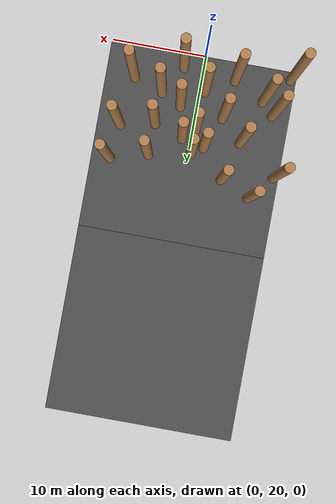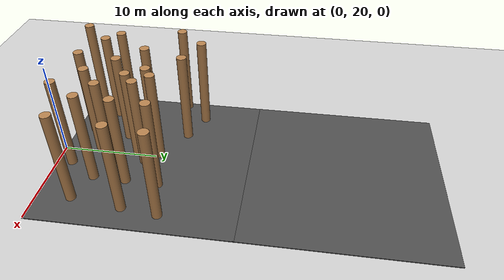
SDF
<sdf version="1.6">
 <world name="default">
  <model name="ground_plane">
   <static>1</static>
   <link name="link">
    <collision name="collision">
     <geometry><plane><normal>0 0 1</normal><size>100 100</size></plane></geometry>
     <surface><friction><ode><mu>100</mu><mu2>50</mu2></ode></friction></surface>
    </collision>
    <visual name="visual">
     <cast_shadows>0</cast_shadows>
     <geometry><plane><normal>0 0 1</normal><size>100 100</size></plane></geometry>
     <material>
      <script><uri>file://media/materials/scripts/gazebo.material</uri><name>Gazebo/Grey</name></script>
     </material>
    </visual>
   </link>
  </model>
  <model name="asphalt_plane_2">
   <static>1</static>
   <link name="link">
    <collision name="collision"><geometry><box><size>20 20 0.1</size></box></geometry></collision>
    <visual name="visual">
     <cast_shadows>0</cast_shadows>
     <geometry><box><size>20 20 0.1</size></box></geometry>
     <material>
      <script>
       <uri>model://asphalt_plane/materials/scripts</uri>
       <uri>model://asphalt_plane/materials/textures</uri>
       <name>vrc/asphalt</name>
      </script>
     </material>
    </visual>
   </link>
   <pose>0.117642 29.9977 0 0 -0 0</pose>
  </model>
  <model name="test_2">
   <link name="link_0_clone_0_clone_5_clone_12_clone_4_clone_10">
    <pose>-2.21925 7.76343 0.043478 0 -0 9e-06</pose>
    <inertial>
     <mass>1000</mass>
     <inertia><ixx>0.145833</ixx><ixy>0</ixy><ixz>0</ixz><iyy>0.145833</iyy><iyz>0</iyz><izz>0.125</izz></inertia>
    </inertial>
    <visual name="visual">
     <pose>0 0 4.5 0 -0 0</pose>
     <geometry><cylinder><radius>0.5</radius><length>10</length></cylinder></geometry>
     <material>
      <lighting>1</lighting>
      <script><uri>file://media/materials/scripts/gazebo.material</uri><name>Gazebo/WoodFloor</name></script>
      <ambient>0.3 0.3 0.3 1</ambient>
      <diffuse>0.7 0.7 0.7 1</diffuse>
      <specular>0.01 0.01 0.01 1</specular>
      <emissive>0 0 0 1</emissive>
      <shader type="vertex"><normal_map>__default__</normal_map></shader>
     </material>
    </visual>
    <collision name="collision">
     <pose>0 0 4.5 0 -0 0</pose>
     <geometry><cylinder><radius>0.5</radius><length>10</length></cylinder></geometry>
     <surface>
      <friction>
       <ode><mu>1</mu><mu2>1</mu2><fdir1>0 0 0</fdir1><slip1>0</slip1><slip2>0</slip2></ode>
       <torsional>
        <coefficient>1</coefficient>
        <patch_radius>0</patch_radius>
        <surface_radius>0</surface_radius>
        <use_patch_radius>1</use_patch_radius>
        <ode><slip>0</slip></ode>
       </torsional>
      </friction>
      <bounce><restitution_coefficient>0</restitution_coefficient><threshold>1e+06</threshold></bounce>
      <contact>
       <collide_without_contact>0</collide_without_contact>
       <collide_without_contact_bitmask>1</collide_without_contact_bitmask>
       <collide_bitmask>1</collide_bitmask>
       <ode>
        <soft_cfm>0</soft_cfm>
        <soft_erp>0.2</soft_erp>
        <kp>1e+13</kp>
        <kd>1</kd>
        <max_vel>0.01</max_vel>
        <min_depth>0</min_depth>
       </ode>
       <bullet>
        <split_impulse>1</split_impulse>
        <split_impulse_penetration_threshold>-0.01</split_impulse_penetration_threshold>
        <soft_cfm>0</soft_cfm>
        <soft_erp>0.2</soft_erp>
        <kp>1e+13</kp>
        <kd>1</kd>
       </bullet>
      </contact>
     </surface>
    </collision>
   </link>
   <link name="link_0_clone_0_clone_5_clone_12_clone_4_clone_13">
    <pose>3.34294 7.33135 0.043478 0 -0 9e-06</pose>
    <inertial>
     <mass>1000</mass>
     <inertia><ixx>0.145833</ixx><ixy>0</ixy><ixz>0</ixz><iyy>0.145833</iyy><iyz>0</iyz><izz>0.125</izz></inertia>
    </inertial>
    <visual name="visual">
     <pose>0 0 4.5 0 -0 0</pose>
     <geometry><cylinder><radius>0.5</radius><length>10</length></cylinder></geometry>
     <material>
      <lighting>1</lighting>
      <script><uri>file://media/materials/scripts/gazebo.material</uri><name>Gazebo/WoodFloor</name></script>
      <ambient>0.3 0.3 0.3 1</ambient>
      <diffuse>0.7 0.7 0.7 1</diffuse>
      <specular>0.01 0.01 0.01 1</specular>
      <emissive>0 0 0 1</emissive>
      <shader type="vertex"><normal_map>__default__</normal_map></shader>
     </material>
    </visual>
    <collision name="collision">
     <pose>0 0 4.5 0 -0 0</pose>
     <geometry><cylinder><radius>0.5</radius><length>10</length></cylinder></geometry>
     <surface>
      <friction>
       <ode><mu>1</mu><mu2>1</mu2><fdir1>0 0 0</fdir1><slip1>0</slip1><slip2>0</slip2></ode>
       <torsional>
        <coefficient>1</coefficient>
        <patch_radius>0</patch_radius>
        <surface_radius>0</surface_radius>
        <use_patch_radius>1</use_patch_radius>
        <ode><slip>0</slip></ode>
       </torsional>
      </friction>
      <bounce><restitution_coefficient>0</restitution_coefficient><threshold>1e+06</threshold></bounce>
      <contact>
       <collide_without_contact>0</collide_without_contact>
       <collide_without_contact_bitmask>1</collide_without_contact_bitmask>
       <collide_bitmask>1</collide_bitmask>
       <ode>
        <soft_cfm>0</soft_cfm>
        <soft_erp>0.2</soft_erp>
        <kp>1e+13</kp>
        <kd>1</kd>
        <max_vel>0.01</max_vel>
        <min_depth>0</min_depth>
       </ode>
       <bullet>
        <split_impulse>1</split_impulse>
        <split_impulse_penetration_threshold>-0.01</split_impulse_penetration_threshold>
        <soft_cfm>0</soft_cfm>
        <soft_erp>0.2</soft_erp>
        <kp>1e+13</kp>
        <kd>1</kd>
       </bullet>
      </contact>
     </surface>
    </collision>
   </link>
   <link name="link_0_clone_0_clone_5_clone_12_clone_4_clone_15">
    <pose>8.26468 9.27656 0.043478 0 -0 9e-06</pose>
    <inertial>
     <mass>1000</mass>
     <inertia><ixx>0.145833</ixx><ixy>0</ixy><ixz>0</ixz><iyy>0.145833</iyy><iyz>0</iyz><izz>0.125</izz></inertia>
    </inertial>
    <visual name="visual">
     <pose>0 0 4.5 0 -0 0</pose>
     <geometry><cylinder><radius>0.5</radius><length>10</length></cylinder></geometry>
     <material>
      <lighting>1</lighting>
      <script><uri>file://media/materials/scripts/gazebo.material</uri><name>Gazebo/WoodFloor</name></script>
      <ambient>0.3 0.3 0.3 1</ambient>
      <diffuse>0.7 0.7 0.7 1</diffuse>
      <specular>0.01 0.01 0.01 1</specular>
      <emissive>0 0 0 1</emissive>
      <shader type="vertex"><normal_map>__default__</normal_map></shader>
     </material>
    </visual>
    <collision name="collision">
     <pose>0 0 4.5 0 -0 0</pose>
     <geometry><cylinder><radius>0.5</radius><length>10</length></cylinder></geometry>
     <surface>
      <friction>
       <ode><mu>1</mu><mu2>1</mu2><fdir1>0 0 0</fdir1><slip1>0</slip1><slip2>0</slip2></ode>
       <torsional>
        <coefficient>1</coefficient>
        <patch_radius>0</patch_radius>
        <surface_radius>0</surface_radius>
        <use_patch_radius>1</use_patch_radius>
        <ode><slip>0</slip></ode>
       </torsional>
      </friction>
      <bounce><restitution_coefficient>0</restitution_coefficient><threshold>1e+06</threshold></bounce>
      <contact>
       <collide_without_contact>0</collide_without_contact>
       <collide_without_contact_bitmask>1</collide_without_contact_bitmask>
       <collide_bitmask>1</collide_bitmask>
       <ode>
        <soft_cfm>0</soft_cfm>
        <soft_erp>0.2</soft_erp>
        <kp>1e+13</kp>
        <kd>1</kd>
        <max_vel>0.01</max_vel>
        <min_depth>0</min_depth>
       </ode>
       <bullet>
        <split_impulse>1</split_impulse>
        <split_impulse_penetration_threshold>-0.01</split_impulse_penetration_threshold>
        <soft_cfm>0</soft_cfm>
        <soft_erp>0.2</soft_erp>
        <kp>1e+13</kp>
        <kd>1</kd>
       </bullet>
      </contact>
     </surface>
    </collision>
   </link>
   <link name="link_0_clone_0_clone_5_clone_12_clone_4_clone_19">
    <pose>-5.48575 9.45539 0.043478 0 -0 9e-06</pose>
    <inertial>
     <mass>1000</mass>
     <inertia><ixx>0.145833</ixx><ixy>0</ixy><ixz>0</ixz><iyy>0.145833</iyy><iyz>0</iyz><izz>0.125</izz></inertia>
    </inertial>
    <visual name="visual">
     <pose>0 0 4.5 0 -0 0</pose>
     <geometry><cylinder><radius>0.5</radius><length>10</length></cylinder></geometry>
     <material>
      <lighting>1</lighting>
      <script><uri>file://media/materials/scripts/gazebo.material</uri><name>Gazebo/WoodFloor</name></script>
      <ambient>0.3 0.3 0.3 1</ambient>
      <diffuse>0.7 0.7 0.7 1</diffuse>
      <specular>0.01 0.01 0.01 1</specular>
      <emissive>0 0 0 1</emissive>
      <shader type="vertex"><normal_map>__default__</normal_map></shader>
     </material>
    </visual>
    <collision name="collision">
     <pose>0 0 4.5 0 -0 0</pose>
     <geometry><cylinder><radius>0.5</radius><length>10</length></cylinder></geometry>
     <surface>
      <friction>
       <ode><mu>1</mu><mu2>1</mu2><fdir1>0 0 0</fdir1><slip1>0</slip1><slip2>0</slip2></ode>
       <torsional>
        <coefficient>1</coefficient>
        <patch_radius>0</patch_radius>
        <surface_radius>0</surface_radius>
        <use_patch_radius>1</use_patch_radius>
        <ode><slip>0</slip></ode>
       </torsional>
      </friction>
      <bounce><restitution_coefficient>0</restitution_coefficient><threshold>1e+06</threshold></bounce>
      <contact>
       <collide_without_contact>0</collide_without_contact>
       <collide_without_contact_bitmask>1</collide_without_contact_bitmask>
       <collide_bitmask>1</collide_bitmask>
       <ode>
        <soft_cfm>0</soft_cfm>
        <soft_erp>0.2</soft_erp>
        <kp>1e+13</kp>
        <kd>1</kd>
        <max_vel>0.01</max_vel>
        <min_depth>0</min_depth>
       </ode>
       <bullet>
        <split_impulse>1</split_impulse>
        <split_impulse_penetration_threshold>-0.01</split_impulse_penetration_threshold>
        <soft_cfm>0</soft_cfm>
        <soft_erp>0.2</soft_erp>
        <kp>1e+13</kp>
        <kd>1</kd>
       </bullet>
      </contact>
     </surface>
    </collision>
   </link>
   <link name="link_0_clone_0_clone_5_clone_12_clone_4_clone_24">
    <pose>8.90669 14.495 0.043478 0 -0 9e-06</pose>
    <inertial>
     <mass>1000</mass>
     <inertia><ixx>0.145833</ixx><ixy>0</ixy><ixz>0</ixz><iyy>0.145833</iyy><iyz>0</iyz><izz>0.125</izz></inertia>
    </inertial>
    <visual name="visual">
     <pose>0 0 4.5 0 -0 0</pose>
     <geometry><cylinder><radius>0.5</radius><length>10</length></cylinder></geometry>
     <material>
      <lighting>1</lighting>
      <script><uri>file://media/materials/scripts/gazebo.material</uri><name>Gazebo/WoodFloor</name></script>
      <ambient>0.3 0.3 0.3 1</ambient>
      <diffuse>0.7 0.7 0.7 1</diffuse>
      <specular>0.01 0.01 0.01 1</specular>
      <emissive>0 0 0 1</emissive>
      <shader type="vertex"><normal_map>__default__</normal_map></shader>
     </material>
    </visual>
    <collision name="collision">
     <pose>0 0 4.5 0 -0 0</pose>
     <geometry><cylinder><radius>0.5</radius><length>10</length></cylinder></geometry>
     <surface>
      <friction>
       <ode><mu>1</mu><mu2>1</mu2><fdir1>0 0 0</fdir1><slip1>0</slip1><slip2>0</slip2></ode>
       <torsional>
        <coefficient>1</coefficient>
        <patch_radius>0</patch_radius>
        <surface_radius>0</surface_radius>
        <use_patch_radius>1</use_patch_radius>
        <ode><slip>0</slip></ode>
       </torsional>
      </friction>
      <bounce><restitution_coefficient>0</restitution_coefficient><threshold>1e+06</threshold></bounce>
      <contact>
       <collide_without_contact>0</collide_without_contact>
       <collide_without_contact_bitmask>1</collide_without_contact_bitmask>
       <collide_bitmask>1</collide_bitmask>
       <ode>
        <soft_cfm>0</soft_cfm>
        <soft_erp>0.2</soft_erp>
        <kp>1e+13</kp>
        <kd>1</kd>
        <max_vel>0.01</max_vel>
        <min_depth>0</min_depth>
       </ode>
       <bullet>
        <split_impulse>1</split_impulse>
        <split_impulse_penetration_threshold>-0.01</split_impulse_penetration_threshold>
        <soft_cfm>0</soft_cfm>
        <soft_erp>0.2</soft_erp>
        <kp>1e+13</kp>
        <kd>1</kd>
       </bullet>
      </contact>
     </surface>
    </collision>
   </link>
   <link name="link_0_clone_0_clone_5_clone_12_clone_4_clone_27">
    <pose>-2.60779 18.3839 0.043478 0 -0 9e-06</pose>
    <inertial>
     <mass>1000</mass>
     <inertia><ixx>0.145833</ixx><ixy>0</ixy><ixz>0</ixz><iyy>0.145833</iyy><iyz>0</iyz><izz>0.125</izz></inertia>
    </inertial>
    <visual name="visual">
     <pose>0 0 4.5 0 -0 0</pose>
     <geometry><cylinder><radius>0.5</radius><length>10</length></cylinder></geometry>
     <material>
      <lighting>1</lighting>
      <script><uri>file://media/materials/scripts/gazebo.material</uri><name>Gazebo/WoodFloor</name></script>
      <ambient>0.3 0.3 0.3 1</ambient>
      <diffuse>0.7 0.7 0.7 1</diffuse>
      <specular>0.01 0.01 0.01 1</specular>
      <emissive>0 0 0 1</emissive>
      <shader type="vertex"><normal_map>__default__</normal_map></shader>
     </material>
    </visual>
    <collision name="collision">
     <pose>0 0 4.5 0 -0 0</pose>
     <geometry><cylinder><radius>0.5</radius><length>10</length></cylinder></geometry>
     <surface>
      <friction>
       <ode><mu>1</mu><mu2>1</mu2><fdir1>0 0 0</fdir1><slip1>0</slip1><slip2>0</slip2></ode>
       <torsional>
        <coefficient>1</coefficient>
        <patch_radius>0</patch_radius>
        <surface_radius>0</surface_radius>
        <use_patch_radius>1</use_patch_radius>
        <ode><slip>0</slip></ode>
       </torsional>
      </friction>
      <bounce><restitution_coefficient>0</restitution_coefficient><threshold>1e+06</threshold></bounce>
      <contact>
       <collide_without_contact>0</collide_without_contact>
       <collide_without_contact_bitmask>1</collide_without_contact_bitmask>
       <collide_bitmask>1</collide_bitmask>
       <ode>
        <soft_cfm>0</soft_cfm>
        <soft_erp>0.2</soft_erp>
        <kp>1e+13</kp>
        <kd>1</kd>
        <max_vel>0.01</max_vel>
        <min_depth>0</min_depth>
       </ode>
       <bullet>
        <split_impulse>1</split_impulse>
        <split_impulse_penetration_threshold>-0.01</split_impulse_penetration_threshold>
        <soft_cfm>0</soft_cfm>
        <soft_erp>0.2</soft_erp>
        <kp>1e+13</kp>
        <kd>1</kd>
       </bullet>
      </contact>
     </surface>
    </collision>
   </link>
   <link name="link_0_clone_0_clone_5_clone_12_clone_4_clone_27_clone">
    <pose>0.717793 9.50399 0.043478 0 -0 1.2e-05</pose>
    <inertial>
     <mass>1000</mass>
     <inertia><ixx>0.145833</ixx><ixy>0</ixy><ixz>0</ixz><iyy>0.145833</iyy><iyz>0</iyz><izz>0.125</izz></inertia>
    </inertial>
    <visual name="visual">
     <pose>0 0 4.5 0 -0 0</pose>
     <geometry><cylinder><radius>0.5</radius><length>10</length></cylinder></geometry>
     <material>
      <lighting>1</lighting>
      <script><uri>file://media/materials/scripts/gazebo.material</uri><name>Gazebo/WoodFloor</name></script>
      <ambient>0.3 0.3 0.3 1</ambient>
      <diffuse>0.7 0.7 0.7 1</diffuse>
      <specular>0.01 0.01 0.01 1</specular>
      <emissive>0 0 0 1</emissive>
      <shader type="vertex"><normal_map>__default__</normal_map></shader>
     </material>
    </visual>
    <collision name="collision">
     <pose>0 0 4.5 0 -0 0</pose>
     <geometry><cylinder><radius>0.5</radius><length>10</length></cylinder></geometry>
     <surface>
      <friction>
       <ode><mu>1</mu><mu2>1</mu2><fdir1>0 0 0</fdir1><slip1>0</slip1><slip2>0</slip2></ode>
       <torsional>
        <coefficient>1</coefficient>
        <patch_radius>0</patch_radius>
        <surface_radius>0</surface_radius>
        <use_patch_radius>1</use_patch_radius>
        <ode><slip>0</slip></ode>
       </torsional>
      </friction>
      <bounce><restitution_coefficient>0</restitution_coefficient><threshold>1e+06</threshold></bounce>
      <contact>
       <collide_without_contact>0</collide_without_contact>
       <collide_without_contact_bitmask>1</collide_without_contact_bitmask>
       <collide_bitmask>1</collide_bitmask>
       <ode>
        <soft_cfm>0</soft_cfm>
        <soft_erp>0.2</soft_erp>
        <kp>1e+13</kp>
        <kd>1</kd>
        <max_vel>0.01</max_vel>
        <min_depth>0</min_depth>
       </ode>
       <bullet>
        <split_impulse>1</split_impulse>
        <split_impulse_penetration_threshold>-0.01</split_impulse_penetration_threshold>
        <soft_cfm>0</soft_cfm>
        <soft_erp>0.2</soft_erp>
        <kp>1e+13</kp>
        <kd>1</kd>
       </bullet>
      </contact>
     </surface>
    </collision>
   </link>
   <link name="link_0_clone_0_clone_5_clone_12_clone_4_clone_27_clone_0">
    <pose>-3.89645 14.1863 0.043478 0 -0 1.2e-05</pose>
    <inertial>
     <mass>1000</mass>
     <inertia><ixx>0.145833</ixx><ixy>0</ixy><ixz>0</ixz><iyy>0.145833</iyy><iyz>0</iyz><izz>0.125</izz></inertia>
    </inertial>
    <visual name="visual">
     <pose>0 0 4.5 0 -0 0</pose>
     <geometry><cylinder><radius>0.5</radius><length>10</length></cylinder></geometry>
     <material>
      <lighting>1</lighting>
      <script><uri>file://media/materials/scripts/gazebo.material</uri><name>Gazebo/WoodFloor</name></script>
      <ambient>0.3 0.3 0.3 1</ambient>
      <diffuse>0.7 0.7 0.7 1</diffuse>
      <specular>0.01 0.01 0.01 1</specular>
      <emissive>0 0 0 1</emissive>
      <shader type="vertex"><normal_map>__default__</normal_map></shader>
     </material>
    </visual>
    <collision name="collision">
     <pose>0 0 4.5 0 -0 0</pose>
     <geometry><cylinder><radius>0.5</radius><length>10</length></cylinder></geometry>
     <surface>
      <friction>
       <ode><mu>1</mu><mu2>1</mu2><fdir1>0 0 0</fdir1><slip1>0</slip1><slip2>0</slip2></ode>
       <torsional>
        <coefficient>1</coefficient>
        <patch_radius>0</patch_radius>
        <surface_radius>0</surface_radius>
        <use_patch_radius>1</use_patch_radius>
        <ode><slip>0</slip></ode>
       </torsional>
      </friction>
      <bounce><restitution_coefficient>0</restitution_coefficient><threshold>1e+06</threshold></bounce>
      <contact>
       <collide_without_contact>0</collide_without_contact>
       <collide_without_contact_bitmask>1</collide_without_contact_bitmask>
       <collide_bitmask>1</collide_bitmask>
       <ode>
        <soft_cfm>0</soft_cfm>
        <soft_erp>0.2</soft_erp>
        <kp>1e+13</kp>
        <kd>1</kd>
        <max_vel>0.01</max_vel>
        <min_depth>0</min_depth>
       </ode>
       <bullet>
        <split_impulse>1</split_impulse>
        <split_impulse_penetration_threshold>-0.01</split_impulse_penetration_threshold>
        <soft_cfm>0</soft_cfm>
        <soft_erp>0.2</soft_erp>
        <kp>1e+13</kp>
        <kd>1</kd>
       </bullet>
      </contact>
     </surface>
    </collision>
   </link>
   <link name="link_0_clone_0_clone_5_clone_12_clone_4_clone_27_clone_1">
    <pose>5.16618 10.3649 0.043478 0 -0 1.2e-05</pose>
    <inertial>
     <mass>1000</mass>
     <inertia><ixx>0.145833</ixx><ixy>0</ixy><ixz>0</ixz><iyy>0.145833</iyy><iyz>0</iyz><izz>0.125</izz></inertia>
    </inertial>
    <visual name="visual">
     <pose>0 0 4.5 0 -0 0</pose>
     <geometry><cylinder><radius>0.5</radius><length>10</length></cylinder></geometry>
     <material>
      <lighting>1</lighting>
      <script><uri>file://media/materials/scripts/gazebo.material</uri><name>Gazebo/WoodFloor</name></script>
      <ambient>0.3 0.3 0.3 1</ambient>
      <diffuse>0.7 0.7 0.7 1</diffuse>
      <specular>0.01 0.01 0.01 1</specular>
      <emissive>0 0 0 1</emissive>
      <shader type="vertex"><normal_map>__default__</normal_map></shader>
     </material>
    </visual>
    <collision name="collision">
     <pose>0 0 4.5 0 -0 0</pose>
     <geometry><cylinder><radius>0.5</radius><length>10</length></cylinder></geometry>
     <surface>
      <friction>
       <ode><mu>1</mu><mu2>1</mu2><fdir1>0 0 0</fdir1><slip1>0</slip1><slip2>0</slip2></ode>
       <torsional>
        <coefficient>1</coefficient>
        <patch_radius>0</patch_radius>
        <surface_radius>0</surface_radius>
        <use_patch_radius>1</use_patch_radius>
        <ode><slip>0</slip></ode>
       </torsional>
      </friction>
      <bounce><restitution_coefficient>0</restitution_coefficient><threshold>1e+06</threshold></bounce>
      <contact>
       <collide_without_contact>0</collide_without_contact>
       <collide_without_contact_bitmask>1</collide_without_contact_bitmask>
       <collide_bitmask>1</collide_bitmask>
       <ode>
        <soft_cfm>0</soft_cfm>
        <soft_erp>0.2</soft_erp>
        <kp>1e+13</kp>
        <kd>1</kd>
        <max_vel>0.01</max_vel>
        <min_depth>0</min_depth>
       </ode>
       <bullet>
        <split_impulse>1</split_impulse>
        <split_impulse_penetration_threshold>-0.01</split_impulse_penetration_threshold>
        <soft_cfm>0</soft_cfm>
        <soft_erp>0.2</soft_erp>
        <kp>1e+13</kp>
        <kd>1</kd>
       </bullet>
      </contact>
     </surface>
    </collision>
   </link>
   <link name="link_0_clone_0_clone_5_clone_12_clone_4_clone_27_clone_10">
    <pose>2.20173 14.825 0.043478 0 -0 1.2e-05</pose>
    <inertial>
     <mass>1000</mass>
     <inertia><ixx>0.145833</ixx><ixy>0</ixy><ixz>0</ixz><iyy>0.145833</iyy><iyz>0</iyz><izz>0.125</izz></inertia>
    </inertial>
    <visual name="visual">
     <pose>0 0 4.5 0 -0 0</pose>
     <geometry><cylinder><radius>0.5</radius><length>10</length></cylinder></geometry>
     <material>
      <lighting>1</lighting>
      <script><uri>file://media/materials/scripts/gazebo.material</uri><name>Gazebo/WoodFloor</name></script>
      <ambient>0.3 0.3 0.3 1</ambient>
      <diffuse>0.7 0.7 0.7 1</diffuse>
      <specular>0.01 0.01 0.01 1</specular>
      <emissive>0 0 0 1</emissive>
      <shader type="vertex"><normal_map>__default__</normal_map></shader>
     </material>
    </visual>
    <collision name="collision">
     <pose>0 0 4.5 0 -0 0</pose>
     <geometry><cylinder><radius>0.5</radius><length>10</length></cylinder></geometry>
     <surface>
      <friction>
       <ode><mu>1</mu><mu2>1</mu2><fdir1>0 0 0</fdir1><slip1>0</slip1><slip2>0</slip2></ode>
       <torsional>
        <coefficient>1</coefficient>
        <patch_radius>0</patch_radius>
        <surface_radius>0</surface_radius>
        <use_patch_radius>1</use_patch_radius>
        <ode><slip>0</slip></ode>
       </torsional>
      </friction>
      <bounce><restitution_coefficient>0</restitution_coefficient><threshold>1e+06</threshold></bounce>
      <contact>
       <collide_without_contact>0</collide_without_contact>
       <collide_without_contact_bitmask>1</collide_without_contact_bitmask>
       <collide_bitmask>1</collide_bitmask>
       <ode>
        <soft_cfm>0</soft_cfm>
        <soft_erp>0.2</soft_erp>
        <kp>1e+13</kp>
        <kd>1</kd>
        <max_vel>0.01</max_vel>
        <min_depth>0</min_depth>
       </ode>
       <bullet>
        <split_impulse>1</split_impulse>
        <split_impulse_penetration_threshold>-0.01</split_impulse_penetration_threshold>
        <soft_cfm>0</soft_cfm>
        <soft_erp>0.2</soft_erp>
        <kp>1e+13</kp>
        <kd>1</kd>
       </bullet>
      </contact>
     </surface>
    </collision>
   </link>
   <link name="link_0_clone_0_clone_5_clone_12_clone_4_clone_27_clone_2">
    <pose>5.41682 17.1089 0.043478 0 -0 1.2e-05</pose>
    <inertial>
     <mass>1000</mass>
     <inertia><ixx>0.145833</ixx><ixy>0</ixy><ixz>0</ixz><iyy>0.145833</iyy><iyz>0</iyz><izz>0.125</izz></inertia>
    </inertial>
    <visual name="visual">
     <pose>0 0 4.5 0 -0 0</pose>
     <geometry><cylinder><radius>0.5</radius><length>10</length></cylinder></geometry>
     <material>
      <lighting>1</lighting>
      <script><uri>file://media/materials/scripts/gazebo.material</uri><name>Gazebo/WoodFloor</name></script>
      <ambient>0.3 0.3 0.3 1</ambient>
      <diffuse>0.7 0.7 0.7 1</diffuse>
      <specular>0.01 0.01 0.01 1</specular>
      <emissive>0 0 0 1</emissive>
      <shader type="vertex"><normal_map>__default__</normal_map></shader>
     </material>
    </visual>
    <collision name="collision">
     <pose>0 0 4.5 0 -0 0</pose>
     <geometry><cylinder><radius>0.5</radius><length>10</length></cylinder></geometry>
     <surface>
      <friction>
       <ode><mu>1</mu><mu2>1</mu2><fdir1>0 0 0</fdir1><slip1>0</slip1><slip2>0</slip2></ode>
       <torsional>
        <coefficient>1</coefficient>
        <patch_radius>0</patch_radius>
        <surface_radius>0</surface_radius>
        <use_patch_radius>1</use_patch_radius>
        <ode><slip>0</slip></ode>
       </torsional>
      </friction>
      <bounce><restitution_coefficient>0</restitution_coefficient><threshold>1e+06</threshold></bounce>
      <contact>
       <collide_without_contact>0</collide_without_contact>
       <collide_without_contact_bitmask>1</collide_without_contact_bitmask>
       <collide_bitmask>1</collide_bitmask>
       <ode>
        <soft_cfm>0</soft_cfm>
        <soft_erp>0.2</soft_erp>
        <kp>1e+13</kp>
        <kd>1</kd>
        <max_vel>0.01</max_vel>
        <min_depth>0</min_depth>
       </ode>
       <bullet>
        <split_impulse>1</split_impulse>
        <split_impulse_penetration_threshold>-0.01</split_impulse_penetration_threshold>
        <soft_cfm>0</soft_cfm>
        <soft_erp>0.2</soft_erp>
        <kp>1e+13</kp>
        <kd>1</kd>
       </bullet>
      </contact>
     </surface>
    </collision>
   </link>
   <link name="link_0_clone_0_clone_5_clone_12_clone_4_clone_27_clone_5">
    <pose>-7.9953 6.65762 0.043478 0 -0 1.2e-05</pose>
    <inertial>
     <mass>1000</mass>
     <inertia><ixx>0.145833</ixx><ixy>0</ixy><ixz>0</ixz><iyy>0.145833</iyy><iyz>0</iyz><izz>0.125</izz></inertia>
    </inertial>
    <visual name="visual">
     <pose>0 0 4.5 0 -0 0</pose>
     <geometry><cylinder><radius>0.5</radius><length>10</length></cylinder></geometry>
     <material>
      <lighting>1</lighting>
      <script><uri>file://media/materials/scripts/gazebo.material</uri><name>Gazebo/WoodFloor</name></script>
      <ambient>0.3 0.3 0.3 1</ambient>
      <diffuse>0.7 0.7 0.7 1</diffuse>
      <specular>0.01 0.01 0.01 1</specular>
      <emissive>0 0 0 1</emissive>
      <shader type="vertex"><normal_map>__default__</normal_map></shader>
     </material>
    </visual>
    <collision name="collision">
     <pose>0 0 4.5 0 -0 0</pose>
     <geometry><cylinder><radius>0.5</radius><length>10</length></cylinder></geometry>
     <surface>
      <friction>
       <ode><mu>1</mu><mu2>1</mu2><fdir1>0 0 0</fdir1><slip1>0</slip1><slip2>0</slip2></ode>
       <torsional>
        <coefficient>1</coefficient>
        <patch_radius>0</patch_radius>
        <surface_radius>0</surface_radius>
        <use_patch_radius>1</use_patch_radius>
        <ode><slip>0</slip></ode>
       </torsional>
      </friction>
      <bounce><restitution_coefficient>0</restitution_coefficient><threshold>1e+06</threshold></bounce>
      <contact>
       <collide_without_contact>0</collide_without_contact>
       <collide_without_contact_bitmask>1</collide_without_contact_bitmask>
       <collide_bitmask>1</collide_bitmask>
       <ode>
        <soft_cfm>0</soft_cfm>
        <soft_erp>0.2</soft_erp>
        <kp>1e+13</kp>
        <kd>1</kd>
        <max_vel>0.01</max_vel>
        <min_depth>0</min_depth>
       </ode>
       <bullet>
        <split_impulse>1</split_impulse>
        <split_impulse_penetration_threshold>-0.01</split_impulse_penetration_threshold>
        <soft_cfm>0</soft_cfm>
        <soft_erp>0.2</soft_erp>
        <kp>1e+13</kp>
        <kd>1</kd>
       </bullet>
      </contact>
     </surface>
    </collision>
   </link>
   <link name="link_0_clone_0_clone_5_clone_12_clone_4_clone_27_clone_7">
    <pose>2.98424 11.4734 0.043478 0 -0 1.2e-05</pose>
    <inertial>
     <mass>1000</mass>
     <inertia><ixx>0.145833</ixx><ixy>0</ixy><ixz>0</ixz><iyy>0.145833</iyy><iyz>0</iyz><izz>0.125</izz></inertia>
    </inertial>
    <visual name="visual">
     <pose>0 0 4.5 0 -0 0</pose>
     <geometry><cylinder><radius>0.5</radius><length>10</length></cylinder></geometry>
     <material>
      <lighting>1</lighting>
      <script><uri>file://media/materials/scripts/gazebo.material</uri><name>Gazebo/WoodFloor</name></script>
      <ambient>0.3 0.3 0.3 1</ambient>
      <diffuse>0.7 0.7 0.7 1</diffuse>
      <specular>0.01 0.01 0.01 1</specular>
      <emissive>0 0 0 1</emissive>
      <shader type="vertex"><normal_map>__default__</normal_map></shader>
     </material>
    </visual>
    <collision name="collision">
     <pose>0 0 4.5 0 -0 0</pose>
     <geometry><cylinder><radius>0.5</radius><length>10</length></cylinder></geometry>
     <surface>
      <friction>
       <ode><mu>1</mu><mu2>1</mu2><fdir1>0 0 0</fdir1><slip1>0</slip1><slip2>0</slip2></ode>
       <torsional>
        <coefficient>1</coefficient>
        <patch_radius>0</patch_radius>
        <surface_radius>0</surface_radius>
        <use_patch_radius>1</use_patch_radius>
        <ode><slip>0</slip></ode>
       </torsional>
      </friction>
      <bounce><restitution_coefficient>0</restitution_coefficient><threshold>1e+06</threshold></bounce>
      <contact>
       <collide_without_contact>0</collide_without_contact>
       <collide_without_contact_bitmask>1</collide_without_contact_bitmask>
       <collide_bitmask>1</collide_bitmask>
       <ode>
        <soft_cfm>0</soft_cfm>
        <soft_erp>0.2</soft_erp>
        <kp>1e+13</kp>
        <kd>1</kd>
        <max_vel>0.01</max_vel>
        <min_depth>0</min_depth>
       </ode>
       <bullet>
        <split_impulse>1</split_impulse>
        <split_impulse_penetration_threshold>-0.01</split_impulse_penetration_threshold>
        <soft_cfm>0</soft_cfm>
        <soft_erp>0.2</soft_erp>
        <kp>1e+13</kp>
        <kd>1</kd>
       </bullet>
      </contact>
     </surface>
    </collision>
   </link>
   <link name="link_0_clone_0_clone_5_clone_12_clone_4_clone_27_clone_8">
    <pose>-1.602 11.9491 0.043478 0 -0 1.2e-05</pose>
    <inertial>
     <mass>1000</mass>
     <inertia><ixx>0.145833</ixx><ixy>0</ixy><ixz>0</ixz><iyy>0.145833</iyy><iyz>0</iyz><izz>0.125</izz></inertia>
    </inertial>
    <visual name="visual">
     <pose>0 0 4.5 0 -0 0</pose>
     <geometry><cylinder><radius>0.5</radius><length>10</length></cylinder></geometry>
     <material>
      <lighting>1</lighting>
      <script><uri>file://media/materials/scripts/gazebo.material</uri><name>Gazebo/WoodFloor</name></script>
      <ambient>0.3 0.3 0.3 1</ambient>
      <diffuse>0.7 0.7 0.7 1</diffuse>
      <specular>0.01 0.01 0.01 1</specular>
      <emissive>0 0 0 1</emissive>
      <shader type="vertex"><normal_map>__default__</normal_map></shader>
     </material>
    </visual>
    <collision name="collision">
     <pose>0 0 4.5 0 -0 0</pose>
     <geometry><cylinder><radius>0.5</radius><length>10</length></cylinder></geometry>
     <surface>
      <friction>
       <ode><mu>1</mu><mu2>1</mu2><fdir1>0 0 0</fdir1><slip1>0</slip1><slip2>0</slip2></ode>
       <torsional>
        <coefficient>1</coefficient>
        <patch_radius>0</patch_radius>
        <surface_radius>0</surface_radius>
        <use_patch_radius>1</use_patch_radius>
        <ode><slip>0</slip></ode>
       </torsional>
      </friction>
      <bounce><restitution_coefficient>0</restitution_coefficient><threshold>1e+06</threshold></bounce>
      <contact>
       <collide_without_contact>0</collide_without_contact>
       <collide_without_contact_bitmask>1</collide_without_contact_bitmask>
       <collide_bitmask>1</collide_bitmask>
       <ode>
        <soft_cfm>0</soft_cfm>
        <soft_erp>0.2</soft_erp>
        <kp>1e+13</kp>
        <kd>1</kd>
        <max_vel>0.01</max_vel>
        <min_depth>0</min_depth>
       </ode>
       <bullet>
        <split_impulse>1</split_impulse>
        <split_impulse_penetration_threshold>-0.01</split_impulse_penetration_threshold>
        <soft_cfm>0</soft_cfm>
        <soft_erp>0.2</soft_erp>
        <kp>1e+13</kp>
        <kd>1</kd>
       </bullet>
      </contact>
     </surface>
    </collision>
   </link>
   <link name="link_0_clone_0_clone_5_clone_12_clone_4_clone_27_clone_9">
    <pose>-0.190554 15.3843 0.043478 0 -0 1.2e-05</pose>
    <inertial>
     <mass>1000</mass>
     <inertia><ixx>0.145833</ixx><ixy>0</ixy><ixz>0</ixz><iyy>0.145833</iyy><iyz>0</iyz><izz>0.125</izz></inertia>
    </inertial>
    <visual name="visual">
     <pose>0 0 4.5 0 -0 0</pose>
     <geometry><cylinder><radius>0.5</radius><length>10</length></cylinder></geometry>
     <material>
      <lighting>1</lighting>
      <script><uri>file://media/materials/scripts/gazebo.material</uri><name>Gazebo/WoodFloor</name></script>
      <ambient>0.3 0.3 0.3 1</ambient>
      <diffuse>0.7 0.7 0.7 1</diffuse>
      <specular>0.01 0.01 0.01 1</specular>
      <emissive>0 0 0 1</emissive>
      <shader type="vertex"><normal_map>__default__</normal_map></shader>
     </material>
    </visual>
    <collision name="collision">
     <pose>0 0 4.5 0 -0 0</pose>
     <geometry><cylinder><radius>0.5</radius><length>10</length></cylinder></geometry>
     <surface>
      <friction>
       <ode><mu>1</mu><mu2>1</mu2><fdir1>0 0 0</fdir1><slip1>0</slip1><slip2>0</slip2></ode>
       <torsional>
        <coefficient>1</coefficient>
        <patch_radius>0</patch_radius>
        <surface_radius>0</surface_radius>
        <use_patch_radius>1</use_patch_radius>
        <ode><slip>0</slip></ode>
       </torsional>
      </friction>
      <bounce><restitution_coefficient>0</restitution_coefficient><threshold>1e+06</threshold></bounce>
      <contact>
       <collide_without_contact>0</collide_without_contact>
       <collide_without_contact_bitmask>1</collide_without_contact_bitmask>
       <collide_bitmask>1</collide_bitmask>
       <ode>
        <soft_cfm>0</soft_cfm>
        <soft_erp>0.2</soft_erp>
        <kp>1e+13</kp>
        <kd>1</kd>
        <max_vel>0.01</max_vel>
        <min_depth>0</min_depth>
       </ode>
       <bullet>
        <split_impulse>1</split_impulse>
        <split_impulse_penetration_threshold>-0.01</split_impulse_penetration_threshold>
        <soft_cfm>0</soft_cfm>
        <soft_erp>0.2</soft_erp>
        <kp>1e+13</kp>
        <kd>1</kd>
       </bullet>
      </contact>
     </surface>
    </collision>
   </link>
   <link name="link_0_clone_0_clone_5_clone_12_clone_4_clone_28">
    <pose>-5.72612 19.7532 0.043478 0 -0 9e-06</pose>
    <inertial>
     <mass>1000</mass>
     <inertia><ixx>0.145833</ixx><ixy>0</ixy><ixz>0</ixz><iyy>0.145833</iyy><iyz>0</iyz><izz>0.125</izz></inertia>
    </inertial>
    <visual name="visual">
     <pose>0 0 4.5 0 -0 0</pose>
     <geometry><cylinder><radius>0.5</radius><length>10</length></cylinder></geometry>
     <material>
      <lighting>1</lighting>
      <script><uri>file://media/materials/scripts/gazebo.material</uri><name>Gazebo/WoodFloor</name></script>
      <ambient>0.3 0.3 0.3 1</ambient>
      <diffuse>0.7 0.7 0.7 1</diffuse>
      <specular>0.01 0.01 0.01 1</specular>
      <emissive>0 0 0 1</emissive>
      <shader type="vertex"><normal_map>__default__</normal_map></shader>
     </material>
    </visual>
    <collision name="collision">
     <pose>0 0 4.5 0 -0 0</pose>
     <geometry><cylinder><radius>0.5</radius><length>10</length></cylinder></geometry>
     <surface>
      <friction>
       <ode><mu>1</mu><mu2>1</mu2><fdir1>0 0 0</fdir1><slip1>0</slip1><slip2>0</slip2></ode>
       <torsional>
        <coefficient>1</coefficient>
        <patch_radius>0</patch_radius>
        <surface_radius>0</surface_radius>
        <use_patch_radius>1</use_patch_radius>
        <ode><slip>0</slip></ode>
       </torsional>
      </friction>
      <bounce><restitution_coefficient>0</restitution_coefficient><threshold>1e+06</threshold></bounce>
      <contact>
       <collide_without_contact>0</collide_without_contact>
       <collide_without_contact_bitmask>1</collide_without_contact_bitmask>
       <collide_bitmask>1</collide_bitmask>
       <ode>
        <soft_cfm>0</soft_cfm>
        <soft_erp>0.2</soft_erp>
        <kp>1e+13</kp>
        <kd>1</kd>
        <max_vel>0.01</max_vel>
        <min_depth>0</min_depth>
       </ode>
       <bullet>
        <split_impulse>1</split_impulse>
        <split_impulse_penetration_threshold>-0.01</split_impulse_penetration_threshold>
        <soft_cfm>0</soft_cfm>
        <soft_erp>0.2</soft_erp>
        <kp>1e+13</kp>
        <kd>1</kd>
       </bullet>
      </contact>
     </surface>
    </collision>
   </link>
   <link name="link_0_clone_0_clone_5_clone_12_clone_4_clone_29">
    <pose>-8.01682 17.1783 0.043478 0 -0 9e-06</pose>
    <inertial>
     <mass>1000</mass>
     <inertia><ixx>0.145833</ixx><ixy>0</ixy><ixz>0</ixz><iyy>0.145833</iyy><iyz>0</iyz><izz>0.125</izz></inertia>
    </inertial>
    <visual name="visual">
     <pose>0 0 4.5 0 -0 0</pose>
     <geometry><cylinder><radius>0.5</radius><length>10</length></cylinder></geometry>
     <material>
      <lighting>1</lighting>
      <script><uri>file://media/materials/scripts/gazebo.material</uri><name>Gazebo/WoodFloor</name></script>
      <ambient>0.3 0.3 0.3 1</ambient>
      <diffuse>0.7 0.7 0.7 1</diffuse>
      <specular>0.01 0.01 0.01 1</specular>
      <emissive>0 0 0 1</emissive>
      <shader type="vertex"><normal_map>__default__</normal_map></shader>
     </material>
    </visual>
    <collision name="collision">
     <pose>0 0 4.5 0 -0 0</pose>
     <geometry><cylinder><radius>0.5</radius><length>10</length></cylinder></geometry>
     <surface>
      <friction>
       <ode><mu>1</mu><mu2>1</mu2><fdir1>0 0 0</fdir1><slip1>0</slip1><slip2>0</slip2></ode>
       <torsional>
        <coefficient>1</coefficient>
        <patch_radius>0</patch_radius>
        <surface_radius>0</surface_radius>
        <use_patch_radius>1</use_patch_radius>
        <ode><slip>0</slip></ode>
       </torsional>
      </friction>
      <bounce><restitution_coefficient>0</restitution_coefficient><threshold>1e+06</threshold></bounce>
      <contact>
       <collide_without_contact>0</collide_without_contact>
       <collide_without_contact_bitmask>1</collide_without_contact_bitmask>
       <collide_bitmask>1</collide_bitmask>
       <ode>
        <soft_cfm>0</soft_cfm>
        <soft_erp>0.2</soft_erp>
        <kp>1e+13</kp>
        <kd>1</kd>
        <max_vel>0.01</max_vel>
        <min_depth>0</min_depth>
       </ode>
       <bullet>
        <split_impulse>1</split_impulse>
        <split_impulse_penetration_threshold>-0.01</split_impulse_penetration_threshold>
        <soft_cfm>0</soft_cfm>
        <soft_erp>0.2</soft_erp>
        <kp>1e+13</kp>
        <kd>1</kd>
       </bullet>
      </contact>
     </surface>
    </collision>
   </link>
   <link name="link_0_clone_0_clone_5_clone_12_clone_4_clone_30">
    <pose>9.33056 18.1694 0.043478 0 -0 9e-06</pose>
    <inertial>
     <mass>1000</mass>
     <inertia><ixx>0.145833</ixx><ixy>0</ixy><ixz>0</ixz><iyy>0.145833</iyy><iyz>0</iyz><izz>0.125</izz></inertia>
    </inertial>
    <visual name="visual">
     <pose>0 0 4.5 0 -0 0</pose>
     <geometry><cylinder><radius>0.5</radius><length>10</length></cylinder></geometry>
     <material>
      <lighting>1</lighting>
      <script><uri>file://media/materials/scripts/gazebo.material</uri><name>Gazebo/WoodFloor</name></script>
      <ambient>0.3 0.3 0.3 1</ambient>
      <diffuse>0.7 0.7 0.7 1</diffuse>
      <specular>0.01 0.01 0.01 1</specular>
      <emissive>0 0 0 1</emissive>
      <shader type="vertex"><normal_map>__default__</normal_map></shader>
     </material>
    </visual>
    <collision name="collision">
     <pose>0 0 4.5 0 -0 0</pose>
     <geometry><cylinder><radius>0.5</radius><length>10</length></cylinder></geometry>
     <surface>
      <friction>
       <ode><mu>1</mu><mu2>1</mu2><fdir1>0 0 0</fdir1><slip1>0</slip1><slip2>0</slip2></ode>
       <torsional>
        <coefficient>1</coefficient>
        <patch_radius>0</patch_radius>
        <surface_radius>0</surface_radius>
        <use_patch_radius>1</use_patch_radius>
        <ode><slip>0</slip></ode>
       </torsional>
      </friction>
      <bounce><restitution_coefficient>0</restitution_coefficient><threshold>1e+06</threshold></bounce>
      <contact>
       <collide_without_contact>0</collide_without_contact>
       <collide_without_contact_bitmask>1</collide_without_contact_bitmask>
       <collide_bitmask>1</collide_bitmask>
       <ode>
        <soft_cfm>0</soft_cfm>
        <soft_erp>0.2</soft_erp>
        <kp>1e+13</kp>
        <kd>1</kd>
        <max_vel>0.01</max_vel>
        <min_depth>0</min_depth>
       </ode>
       <bullet>
        <split_impulse>1</split_impulse>
        <split_impulse_penetration_threshold>-0.01</split_impulse_penetration_threshold>
        <soft_cfm>0</soft_cfm>
        <soft_erp>0.2</soft_erp>
        <kp>1e+13</kp>
        <kd>1</kd>
       </bullet>
      </contact>
     </surface>
    </collision>
   </link>
   <link name="link_0_clone_0_clone_5_clone_12_clone_4_clone_35">
    <pose>0.985525 16.1572 0.043478 0 -0 9e-06</pose>
    <inertial>
     <mass>1000</mass>
     <inertia><ixx>0.145833</ixx><ixy>0</ixy><ixz>0</ixz><iyy>0.145833</iyy><iyz>0</iyz><izz>0.125</izz></inertia>
    </inertial>
    <visual name="visual">
     <pose>0 0 4.5 0 -0 0</pose>
     <geometry><cylinder><radius>0.5</radius><length>10</length></cylinder></geometry>
     <material>
      <lighting>1</lighting>
      <script><uri>file://media/materials/scripts/gazebo.material</uri><name>Gazebo/WoodFloor</name></script>
      <ambient>0.3 0.3 0.3 1</ambient>
      <diffuse>0.7 0.7 0.7 1</diffuse>
      <specular>0.01 0.01 0.01 1</specular>
      <emissive>0 0 0 1</emissive>
      <shader type="vertex"><normal_map>__default__</normal_map></shader>
     </material>
    </visual>
    <collision name="collision">
     <pose>0 0 4.5 0 -0 0</pose>
     <geometry><cylinder><radius>0.5</radius><length>10</length></cylinder></geometry>
     <surface>
      <friction>
       <ode><mu>1</mu><mu2>1</mu2><fdir1>0 0 0</fdir1><slip1>0</slip1><slip2>0</slip2></ode>
       <torsional>
        <coefficient>1</coefficient>
        <patch_radius>0</patch_radius>
        <surface_radius>0</surface_radius>
        <use_patch_radius>1</use_patch_radius>
        <ode><slip>0</slip></ode>
       </torsional>
      </friction>
      <bounce><restitution_coefficient>0</restitution_coefficient><threshold>1e+06</threshold></bounce>
      <contact>
       <collide_without_contact>0</collide_without_contact>
       <collide_without_contact_bitmask>1</collide_without_contact_bitmask>
       <collide_bitmask>1</collide_bitmask>
       <ode>
        <soft_cfm>0</soft_cfm>
        <soft_erp>0.2</soft_erp>
        <kp>1e+13</kp>
        <kd>1</kd>
        <max_vel>0.01</max_vel>
        <min_depth>0</min_depth>
       </ode>
       <bullet>
        <split_impulse>1</split_impulse>
        <split_impulse_penetration_threshold>-0.01</split_impulse_penetration_threshold>
        <soft_cfm>0</soft_cfm>
        <soft_erp>0.2</soft_erp>
        <kp>1e+13</kp>
        <kd>1</kd>
       </bullet>
      </contact>
     </surface>
    </collision>
   </link>
   <link name="link_0_clone_0_clone_5_clone_12_clone_4_clone_36">
    <pose>5.2739 13.7532 0.043478 0 -0 9e-06</pose>
    <inertial>
     <mass>1000</mass>
     <inertia><ixx>0.145833</ixx><ixy>0</ixy><ixz>0</ixz><iyy>0.145833</iyy><iyz>0</iyz><izz>0.125</izz></inertia>
    </inertial>
    <visual name="visual">
     <pose>0 0 4.5 0 -0 0</pose>
     <geometry><cylinder><radius>0.5</radius><length>10</length></cylinder></geometry>
     <material>
      <lighting>1</lighting>
      <script><uri>file://media/materials/scripts/gazebo.material</uri><name>Gazebo/WoodFloor</name></script>
      <ambient>0.3 0.3 0.3 1</ambient>
      <diffuse>0.7 0.7 0.7 1</diffuse>
      <specular>0.01 0.01 0.01 1</specular>
      <emissive>0 0 0 1</emissive>
      <shader type="vertex"><normal_map>__default__</normal_map></shader>
     </material>
    </visual>
    <collision name="collision">
     <pose>0 0 4.5 0 -0 0</pose>
     <geometry><cylinder><radius>0.5</radius><length>10</length></cylinder></geometry>
     <surface>
      <friction>
       <ode><mu>1</mu><mu2>1</mu2><fdir1>0 0 0</fdir1><slip1>0</slip1><slip2>0</slip2></ode>
       <torsional>
        <coefficient>1</coefficient>
        <patch_radius>0</patch_radius>
        <surface_radius>0</surface_radius>
        <use_patch_radius>1</use_patch_radius>
        <ode><slip>0</slip></ode>
       </torsional>
      </friction>
      <bounce><restitution_coefficient>0</restitution_coefficient><threshold>1e+06</threshold></bounce>
      <contact>
       <collide_without_contact>0</collide_without_contact>
       <collide_without_contact_bitmask>1</collide_without_contact_bitmask>
       <collide_bitmask>1</collide_bitmask>
       <ode>
        <soft_cfm>0</soft_cfm>
        <soft_erp>0.2</soft_erp>
        <kp>1e+13</kp>
        <kd>1</kd>
        <max_vel>0.01</max_vel>
        <min_depth>0</min_depth>
       </ode>
       <bullet>
        <split_impulse>1</split_impulse>
        <split_impulse_penetration_threshold>-0.01</split_impulse_penetration_threshold>
        <soft_cfm>0</soft_cfm>
        <soft_erp>0.2</soft_erp>
        <kp>1e+13</kp>
        <kd>1</kd>
       </bullet>
      </contact>
     </surface>
    </collision>
   </link>
   <link name="link_0_clone_0_clone_5_clone_12_clone_4_clone_37">
    <pose>0.956003 13.7187 0.043478 0 -0 9e-06</pose>
    <inertial>
     <mass>1000</mass>
     <inertia><ixx>0.145833</ixx><ixy>0</ixy><ixz>0</ixz><iyy>0.145833</iyy><iyz>0</iyz><izz>0.125</izz></inertia>
    </inertial>
    <visual name="visual">
     <pose>0 0 4.5 0 -0 0</pose>
     <geometry><cylinder><radius>0.5</radius><length>10</length></cylinder></geometry>
     <material>
      <lighting>1</lighting>
      <script><uri>file://media/materials/scripts/gazebo.material</uri><name>Gazebo/WoodFloor</name></script>
      <ambient>0.3 0.3 0.3 1</ambient>
      <diffuse>0.7 0.7 0.7 1</diffuse>
      <specular>0.01 0.01 0.01 1</specular>
      <emissive>0 0 0 1</emissive>
      <shader type="vertex"><normal_map>__default__</normal_map></shader>
     </material>
    </visual>
    <collision name="collision">
     <pose>0 0 4.5 0 -0 0</pose>
     <geometry><cylinder><radius>0.5</radius><length>10</length></cylinder></geometry>
     <surface>
      <friction>
       <ode><mu>1</mu><mu2>1</mu2><fdir1>0 0 0</fdir1><slip1>0</slip1><slip2>0</slip2></ode>
       <torsional>
        <coefficient>1</coefficient>
        <patch_radius>0</patch_radius>
        <surface_radius>0</surface_radius>
        <use_patch_radius>1</use_patch_radius>
        <ode><slip>0</slip></ode>
       </torsional>
      </friction>
      <bounce><restitution_coefficient>0</restitution_coefficient><threshold>1e+06</threshold></bounce>
      <contact>
       <collide_without_contact>0</collide_without_contact>
       <collide_without_contact_bitmask>1</collide_without_contact_bitmask>
       <collide_bitmask>1</collide_bitmask>
       <ode>
        <soft_cfm>0</soft_cfm>
        <soft_erp>0.2</soft_erp>
        <kp>1e+13</kp>
        <kd>1</kd>
        <max_vel>0.01</max_vel>
        <min_depth>0</min_depth>
       </ode>
       <bullet>
        <split_impulse>1</split_impulse>
        <split_impulse_penetration_threshold>-0.01</split_impulse_penetration_threshold>
        <soft_cfm>0</soft_cfm>
        <soft_erp>0.2</soft_erp>
        <kp>1e+13</kp>
        <kd>1</kd>
       </bullet>
      </contact>
     </surface>
    </collision>
   </link>
   <link name="link_0_clone_0_clone_5_clone_19_clone_5">
    <pose>-6.72609 10.7532 0.043478 0 -0 6e-06</pose>
    <inertial>
     <mass>1000</mass>
     <inertia><ixx>0.145833</ixx><ixy>0</ixy><ixz>0</ixz><iyy>0.145833</iyy><iyz>0</iyz><izz>0.125</izz></inertia>
    </inertial>
    <visual name="visual">
     <pose>0 0 4.5 0 -0 0</pose>
     <geometry><cylinder><radius>0.5</radius><length>10</length></cylinder></geometry>
     <material>
      <lighting>1</lighting>
      <script><uri>file://media/materials/scripts/gazebo.material</uri><name>Gazebo/WoodFloor</name></script>
      <ambient>0.3 0.3 0.3 1</ambient>
      <diffuse>0.7 0.7 0.7 1</diffuse>
      <specular>0.01 0.01 0.01 1</specular>
      <emissive>0 0 0 1</emissive>
      <shader type="vertex"><normal_map>__default__</normal_map></shader>
     </material>
    </visual>
    <collision name="collision">
     <pose>0 0 4.5 0 -0 0</pose>
     <geometry><cylinder><radius>0.5</radius><length>10</length></cylinder></geometry>
     <surface>
      <friction>
       <ode><mu>1</mu><mu2>1</mu2><fdir1>0 0 0</fdir1><slip1>0</slip1><slip2>0</slip2></ode>
       <torsional>
        <coefficient>1</coefficient>
        <patch_radius>0</patch_radius>
        <surface_radius>0</surface_radius>
        <use_patch_radius>1</use_patch_radius>
        <ode><slip>0</slip></ode>
       </torsional>
      </friction>
      <bounce><restitution_coefficient>0</restitution_coefficient><threshold>1e+06</threshold></bounce>
      <contact>
       <collide_without_contact>0</collide_without_contact>
       <collide_without_contact_bitmask>1</collide_without_contact_bitmask>
       <collide_bitmask>1</collide_bitmask>
       <ode>
        <soft_cfm>0</soft_cfm>
        <soft_erp>0.2</soft_erp>
        <kp>1e+13</kp>
        <kd>1</kd>
        <max_vel>0.01</max_vel>
        <min_depth>0</min_depth>
       </ode>
       <bullet>
        <split_impulse>1</split_impulse>
        <split_impulse_penetration_threshold>-0.01</split_impulse_penetration_threshold>
        <soft_cfm>0</soft_cfm>
        <soft_erp>0.2</soft_erp>
        <kp>1e+13</kp>
        <kd>1</kd>
       </bullet>
      </contact>
     </surface>
    </collision>
   </link>
   <static>1</static>
   <pose>-1.27395 14.2468 0.506522 0 0 -3e-06</pose>
  </model>
  <model name="asphalt_plane">
   <link name="link">
    <inertial>
     <mass>1</mass>
     <inertia><ixx>1</ixx><ixy>0</ixy><ixz>0</ixz><iyy>1</iyy><iyz>0</iyz><izz>1</izz></inertia>
    </inertial>
    <visual name="visual">
     <cast_shadows>0</cast_shadows>
     <geometry><box><size>20 20 0.1</size></box></geometry>
     <material>
      <script>
       <uri>model://asphalt_plane/materials/scripts</uri>
       <uri>model://asphalt_plane/materials/textures</uri>
       <name>vrc/asphalt</name>
      </script>
      <ambient>0.5 0.5 0.5 1</ambient>
      <diffuse>0.5 0.5 0.5 1</diffuse>
      <specular>0.2 0.2 0.2 1</specular>
      <emissive>0 0 0 1</emissive>
      <shader type="vertex"><normal_map>__default__</normal_map></shader>
     </material>
    </visual>
    <collision name="collision">
     <geometry><box><size>20 20 0.1</size></box></geometry>
     <surface>
      <friction>
       <ode><mu>1</mu><mu2>1</mu2><fdir1>0 0 0</fdir1><slip1>0</slip1><slip2>0</slip2></ode>
       <torsional>
        <coefficient>1</coefficient>
        <patch_radius>0</patch_radius>
        <surface_radius>0</surface_radius>
        <use_patch_radius>1</use_patch_radius>
        <ode><slip>0</slip></ode>
       </torsional>
      </friction>
      <bounce><restitution_coefficient>0</restitution_coefficient><threshold>1e+06</threshold></bounce>
      <contact>
       <collide_without_contact>0</collide_without_contact>
       <collide_without_contact_bitmask>1</collide_without_contact_bitmask>
       <collide_bitmask>1</collide_bitmask>
       <ode>
        <soft_cfm>0</soft_cfm>
        <soft_erp>0.2</soft_erp>
        <kp>1e+13</kp>
        <kd>1</kd>
        <max_vel>0.01</max_vel>
        <min_depth>0</min_depth>
       </ode>
       <bullet>
        <split_impulse>1</split_impulse>
        <split_impulse_penetration_threshold>-0.01</split_impulse_penetration_threshold>
        <soft_cfm>0</soft_cfm>
        <soft_erp>0.2</soft_erp>
        <kp>1e+13</kp>
        <kd>1</kd>
       </bullet>
      </contact>
     </surface>
    </collision>
   </link>
   <static>1</static>
   <pose>0.10948 49.7113 0 0 -0 0</pose>
  </model>
 </world>
</sdf>
